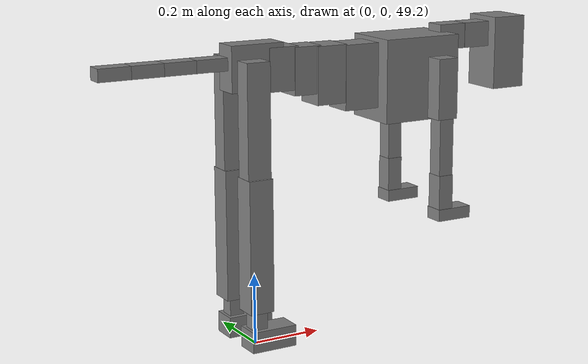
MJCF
<mujoco model="dog">

    <default>
        <joint armature="0.02" stiffness="1" damping="0.2" limited="true"/>
        <geom condim="3" friction="1 0.05 0.05" margin="0.01"/>
        <motor ctrllimited="true" ctrlrange="-1.0 1.0" forcelimited="true" gear="50"/>
    </default>

    <compiler inertiafromgeom="true" angle="radian"/>

    <option timestep="0.016" iterations="50" tolerance="1e-10" solver="Newton" jacobian="dense" cone="pyramidal"/>

    <size nconmax="20000" njmax="60000" nstack="5000000"/>
    <visual>
        <map force="0.1" zfar="30"/>
        <rgba haze="0.15 0.25 0.35 1"/>
        <quality shadowsize="2048"/>
        <global offwidth="800" offheight="800"/>
    </visual>

    <asset>
        <texture type="skybox" builtin="gradient" rgb1="0.3 0.5 0.7" rgb2="0 0 0" width="512" height="512"/>
        <texture name="texplane" type="2d" builtin="checker" rgb1=".2 .3 .4" rgb2=".1 0.15 0.2" width="512" height="512"
                 mark="cross" markrgb=".8 .8 .8"/>
        <texture name="texgeom" type="cube" builtin="flat" mark="cross" width="127" height="1278" rgb1="0.8 0.6 0.4"
                 rgb2="0.8 0.6 0.4" markrgb="1 1 1" random="0.01"/>

        <material name="matplane" reflectance="0.3" texture="texplane" texrepeat="1 1" texuniform="true"/>
        <material name="matgeom" texture="texgeom" texuniform="true" rgba="0.8 0.6 .4 1"/>
    </asset>

    <worldbody>
        <geom name="floor" pos="0 0 0" size="0 0 .25" type="plane" material="matplane" condim="3"/>

        <light directional="false" diffuse=".2 .2 .2" specular="0 0 0" pos="0 0 5" dir="0 0 -1" castshadow="false"/>
        <light mode="targetbodycom" target="torso" directional="false" diffuse=".8 .8 .8" specular="0.3 0.3 0.3"
               pos="0 0 4.0" dir="0 0 -1"/>

        <body name="root" pos="0 0 50">
            <freejoint name="root_1"/>
            <geom type="box" pos="0 0 -0.02" size="0.0774  0.0358  0.063" density="2030"/>

            <body name="spine1" pos="0.054 0 0">
                <joint name="spine1_y" axis="0 1 0" range="0 0.7" limited="true"/>
                <geom type="box" pos="0.02375 0 -0.03" size="0.04375  0.0375  0.05985" density="2030"/>

                <body name="spine2" pos="0.0612 0 0">
                    <joint name="spine2_y" axis="0 1 0" range="-0.15 0.15" limited="true"/>
                    <geom type="box" pos="0.03555  0  -0.04" size="0.04055  0.039  0.06615" density="2030"/>

                    <body name="spine3" pos="0.0730 0 0">
                        <joint name="spine3_y" axis="0 1 0" range="-0.15 0.15" limited="true"/>
                        <geom type="box" pos="0.03555  0  -0.057" size="0.04555  0.0445  0.081" density="2030"/>

                        <body name="spine4" pos="0.0780 0 0">
                            <joint name="spine4_y" axis="0 1 0" range="-0.15 0.15" limited="true"/>
                            <geom type="box" pos="0.05265  0  -0.07" size="0.05265  0.045  0.09135" density="2030"/>

                            <body name="torso" pos="0.1082 0 0">
                                <joint name="torso_y" axis="0 1 0" range="-0.15 0.15" limited="true"/>
                                <geom type="box" pos="0.11925  0  -0.085" size="0.11925  0.085  0.11745"
                                      density="2030"/>

                                <body name="neck1" pos="0.2160  0   0.0180">
                                    <joint name="neck1_y" axis="0 1 0" range="-1.2  -1" limited="true"/>
                                    <geom type="box" pos="0.0423  0  0" size="0.0423  0.03  0.036" density="2325"/>

                                    <body name="neck2" pos="0.0853  0  0">
                                        <joint name="neck2_y" axis="0 1 0" range="0.1  0" limited="true"/>
                                        <geom type="box" pos="0.0423  0  0" size="0.0423  0.03  0.036" density="2325"/>

                                        <body name="head" pos="0.0853  0  0">
                                            <joint name="head_y" axis="0 1 0" range="-0.3  -0.2" limited="true"/>
                                            <geom type="box" pos="0.0531  0  -0.055" size="0.0531  0.06  0.1044"
                                                  density="4030"/>

                                        </body>
                                    </body>
                                </body>

                                <body name="front_shoulder" pos="0.156  0   -0.0480">
                                    <joint name="front_shoulder_y" axis="0 1 0" range="-1 1.5" limited="true"/>
                                    <geom type="box" pos="0 0.13 -0.0587" size="0.0309  0.0264  0.0854" density="1158"/>
                                    <geom type="box" pos="0 -0.13 -0.0587" size="0.0309  0.0264  0.0854"
                                          density="1158"/>

                                    <body name="front_elbow" pos="0  0  -0.1175">
                                        <joint name="front_elbow_y" axis="0 1 0" range="-2 0" limited="true"/>
                                        <geom type="box" pos="0 0.13 -0.1003" size="0.0223  0.0228  0.1003"
                                              density="1081"/>
                                        <geom type="box" pos="0 -0.13 -0.1003" size="0.0223  0.0228  0.1003"
                                              density="1081"/>

                                        <body name="front_wrist" pos="0  0  -0.2006">
                                            <joint name="front_wrist_y" axis="0 1 0" range="-0.2 0" limited="true"/>
                                            <geom type="box" pos="0 0.13 -0.0493" size="0.0227  0.0252  0.0625"
                                                  density="1664"/>
                                            <geom type="box" pos="0 -0.13 -0.0493" size="0.0227  0.0252  0.0625"
                                                  density="1664"/>

                                            <body name="front_finger_end" pos="0  0  -0.0986">
                                                <joint name="front_finger_y" axis="0 1 0" range="-0.4 1"
                                                       limited="true"/>
                                                <geom type="box" pos="0.0288  0.13  -0.0020"
                                                      size="0.0527  0.0288  0.0170" density="1515"/>
                                                <geom type="box" pos="0.0288  -0.13  -0.0020"
                                                      size="0.0527  0.0288  0.0170" density="1515"/>

                                            </body>

                                        </body>
                                    </body>
                                </body>

                            </body>
                        </body>
                    </body>
                </body>
            </body>

            <body name="back_hip" pos="-0.03 0 -0.018">
                <joint name="back_hip_y" axis="0 1 0" range="-1.5 0.3" limited="true"/>
                <geom type="box" pos="0 0.07 -0.1525" size="0.0342  0.0268  0.1753" density="1154"/>
                <geom type="box" pos="0 -0.07 -0.1525" size="0.0342  0.0268  0.1753" density="1154"/>

                <body name="back_knee" pos="0  0  -0.3049">
                    <joint name="back_knee_y" axis="0 1 0" range="0 2.8" limited="true"/>
                    <geom type="box" pos="0 0.07 -0.1694" size="0.0350  0.0345  0.1849" density="1227"/>
                    <geom type="box" pos="0 -0.07 -0.1694" size="0.0350  0.0345  0.1849" density="1227"/>

                    <body name="back_ankle" pos="0  0  -0.3387">
                        <joint name="back_ankle_y" axis="0 1 0" range="-2.2 0" limited="true"/>
                        <geom type="box" pos="0 0.07 -0.0401" size="0.0210  0.0210  0.0514" density="1284"/>
                        <geom type="box" pos="0 -0.07 -0.0401" size="0.0210  0.0210  0.0514" density="1284"/>

                        <body name="back_toe_end" pos="0  0  -0.0803">
                            <joint name="back_toe_y" axis="0 1 0" range="-0.4 1" limited="true"/>
                            <geom type="box" pos="0.0360  0.07  -0.0145" size="0.0660  0.0360  0.0295" density="1515"/>
                            <geom type="box" pos="0.0360  -0.07  -0.0145" size="0.0660  0.0360  0.0295" density="1515"/>

                        </body>
                    </body>
                </body>
            </body>

            <body name="tail1" pos="-0.074 0 -0.006">
                <joint name="tail1_y" axis="0 1 0" range="-0.2 0.2" limited="true"/>
                <geom type="box" pos="-0.0536  0  0" size="0.045  0.025  0.0175" density="1587"/>

                <body name="tail2" pos="-0.09 0 0">
                    <joint name="tail2_y" axis="0 1 0" range="-0.2 0.2" limited="true"/>
                    <geom type="box" pos="-0.0536  0  0" size="0.045  0.025  0.0175" density="1587"/>

                    <body name="tail3" pos="-0.09 0 0">
                        <joint name="tail3_y" axis="0 1 0" range="-0.2 0.2" limited="true"/>
                        <geom type="box" pos="-0.0536  0  0" size="0.045  0.025  0.0175" density="1587"/>

                        <body name="tail4" pos="-0.09 0 0">
                            <joint name="tail4_y" axis="0 1 0" range="-0.2 0.2" limited="true"/>
                            <geom type="box" pos="-0.0536  0  0" size="0.045  0.025  0.0175" density="1587"/>

                        </body>
                    </body>
                </body>
            </body>
        </body>
    </worldbody>

    <actuator>
        <motor joint="spine1_y" forcerange="-150 150     "/>
        <motor joint="spine2_y" forcerange="-150 150     "/>
        <motor joint="spine3_y" forcerange="-150 150     "/>
        <motor joint="spine4_y" forcerange="-150 150     "/>
        <motor joint="torso_y" forcerange="-150 150     "/>
        <motor joint="neck1_y" forcerange="-100 100       "/>
        <motor joint="neck2_y" forcerange="-100 100       "/>
        <motor joint="head_y" forcerange="-150 150       "/>
        <motor joint="front_shoulder_y" forcerange="-129.95 146.33"/>
        <motor joint="front_elbow_y" forcerange="-115.47 150.57"/>
        <motor joint="front_wrist_y" forcerange="-111.27 90.59"/>
        <motor joint="front_finger_y" forcerange="-85.68 27.68"/>
        <motor joint="back_hip_y" forcerange="-329.36 227.79"/>
        <motor joint="back_knee_y" forcerange="-333.32 369.17"/>
        <motor joint="back_angle_y" forcerange="-104.89 131.17"/>
        <motor joint="back_toe_y" forcerange="-120.69 87.16"/>
        <motor joint="tail1_y" forcerange="-50 50     "/>
        <motor joint="tail2_y" forcerange="-50 50     "/>
        <motor joint="tail3_y" forcerange="-50 50     "/>
        <motor joint="tail4_y" forcerange="-50 50     "/>
    </actuator>
</mujoco>
